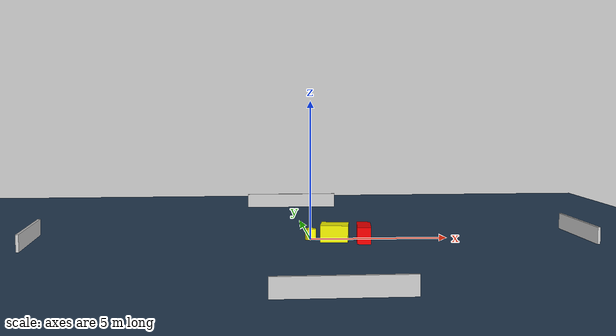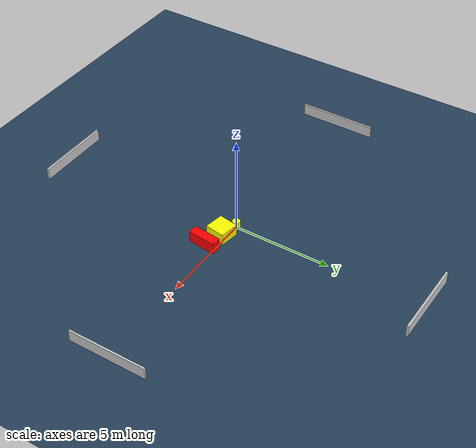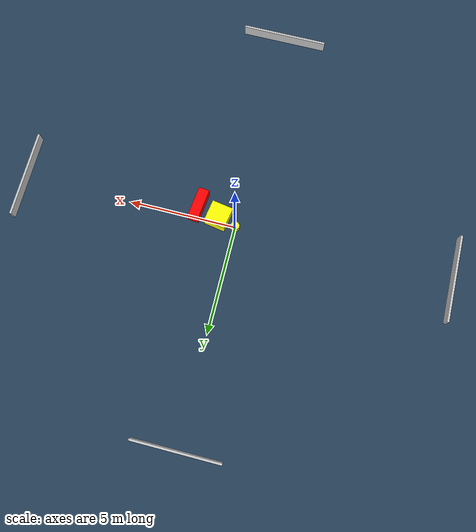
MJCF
<?xml version="1.0" ?>
<mujoco model="generated_environment">
  <option timestep="0.01" integrator="RK4" cone="elliptic"/>
  <default>
    <geom density="1"/>
  </default>
  <asset>
    <texture builtin="gradient" height="3072" name="skybox" rgb1="0.3 0.5 0.7" rgb2="0 0 0" type="skybox" width="512"/>
    <texture builtin="checker" height="300" name="groundplane" rgb1="0.2 0.3 0.4" rgb2="0.1 0.2 0.3" type="2d" width="300"/>
    <material name="groundplane" reflectance="0.2" texrepeat="5 5" texture="groundplane"/>
  </asset>
  <worldbody>
    <light dir="0 0 -1" directional="true" pos="0 0 1.5"/>
    <geom condim="3" friction="0.5 0.005 0.001" material="groundplane" name="floor" pos="0 0 0" size="0 0 0.05" type="plane"/>
    <body name="walls">
      <geom name="wall_1" condim="4" pos="-10.0 0.0 0.3" rgba="0.800000011920929 0.800000011920929 0.800000011920929 1.0" size="0.05 2.0 0.3" type="box"/>
      <geom name="wall_2" condim="4" pos="10.0 0.0 0.3" rgba="0.800000011920929 0.800000011920929 0.800000011920929 1.0" size="0.05 2.0 0.3" type="box"/>
      <geom name="wall_3" condim="4" pos="0.0 -10.0 0.3" rgba="0.800000011920929 0.800000011920929 0.800000011920929 1.0" size="2.0 0.05 0.3" type="box"/>
      <geom name="wall_4" condim="4" pos="0.0 10.0 0.3" rgba="0.800000011920929 0.800000011920929 0.800000011920929 1.0" size="2.0 0.05 0.3" type="box"/>
    </body>
    <body name="robot">
      <joint name="joint_x" type="slide" pos="0 0 0" axis="1 0 0"/>
      <joint name="joint_y" type="slide" pos="0 0 0" axis="0 1 0"/>
      <geom name="robot" type="cylinder" pos="0.0 0.0 0.2" size="0.2 0.2 0.0" mass="5.0" friction="1.0 0.005 0.0001" condim="4" rgba="1.0 1.0 0.0 1.0"/>
    </body>
    <body name="obstacle_1_movable">
      <geom name="obstacle_1_movable" condim="4" pos="0.8461226923713346 -0.2794571805007525 0.3" euler="0 0 260.69476224731824" friction="0.0 0.005 0.001" rgba="1.0 1.0 0.0 1.0" size="0.5054433448872598 0.4960639868493793 0.3" type="box" mass="0.1"/>
      <joint type="free"/>
    </body>
    <body name="obstacle_2_static">
      <geom name="obstacle_2_static" condim="4" pos="1.8628218124438791 -0.5663621270106024 0.3" euler="0 0 173.3564860969671" friction="0.0 0.005 0.001" rgba="1.0 0.0 0.0 1.0" size="0.24701562967119658 0.7283417394434162 0.3" type="box"/>
    </body>
  </worldbody>
  <actuator>
    <motor name="actuator_x" joint="joint_x" gear="1" ctrlrange="-1 1"/>
    <motor name="actuator_y" joint="joint_y" gear="1" ctrlrange="-1 1"/>
  </actuator>
</mujoco>
